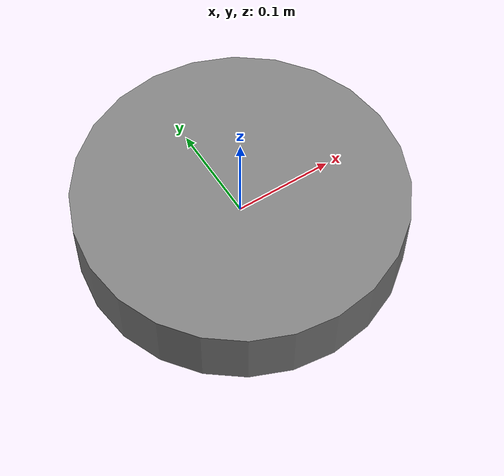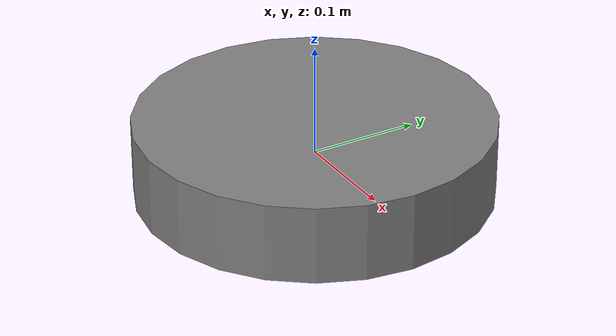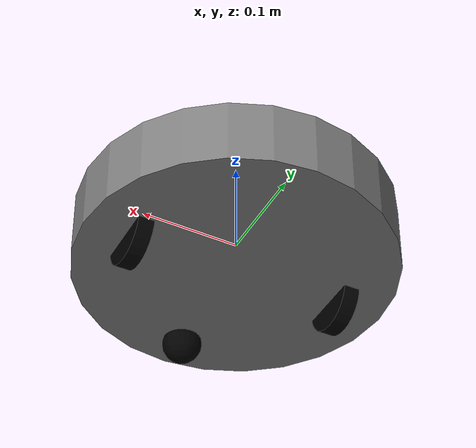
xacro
<?xml version="1.0"?>
<robot xmlns:xacro="http://www.ros.org/wiki/xacro" name="mover">
        <xacro:include filename="wheel.xacro" />
        <link name="world"></link>

        <joint name="base_joint" type="fixed">
                <origin xyz="0 0 0" rpy="0 0 0"/>
                <parent link="world"/>
                <child link="base_link"/>
        </joint>
        <link name="base_link">
                <visual>
                        <origin xyz="0 0 0" rpy="0 0 0"/>
                        <geometry>
                                <cylinder length="0.07" radius="0.16"/>
                        </geometry>
                        <material name="gray">
                                <color rgba="0.5 0.5 0.5 1"/>
                        </material>
                </visual>
                <collision>
                        <origin xyz="0 0 0" rpy="0 0 0"/>
                        <geometry>
                                <cylinder length="0.07" radius="0.16"/>
                        </geometry>
                </collision>
                <inertial>
                        <origin xyz="0 0 0" rpy="0 0 0"/>
                        <mass value="1.2"/>
                        <inertia ixx="2.26" ixy="0.0" ixz="0.0" iyy="6.26" iyz="0.0" izz="8.5" />
                </inertial>
        </link>
</robot>

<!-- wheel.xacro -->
<robot xmlns:xacro="http://www.ros.org/wiki/xacro">
<!-- The front roller -->
<joint name="roller_joint" type="fixed">
        <parent link="base_link"/>
        <child link="roller_link"/>
        <origin xyz="0 -0.12 -0.04" rpy="0 0 0"/>
</joint>
<link name="roller_link">
        <visual>
                <origin xyz="0 0 0" rpy="0 0 0"/>
                <geometry>
                        <sphere radius="0.02"/>
                </geometry>
                <material name="black">
                        <color rgba="0 0 0 1"/>
                </material>
        </visual>
        <collision>
                <origin xyz="0 0 0" rpy="0 0 0"/>
                <geometry>
                        <sphere radius="0.02"/>
                </geometry>
        </collision>
        <inertial>
                <origin xyz="0 0 0" rpy="0 0 0"/>
                <mass value="0.1"/>
                <inertia ixx="0.0082" ixy="0.0" ixz="0.0" iyy="0.0082" iyz="0.0" izz="0.0154" />
        </inertial>
</link>

<!-- Wheel Macro -->
<xacro:macro name="wheel" params="side reflect">
        <joint name="wheel_${side}_joint" type="continuous">
                <parent link="base_link"/>
                <child link="wheel_${side}_link"/>
                <origin xyz="${reflect*0.11} 0 -0.03" rpy="0 1.57075 0"/>
                <axis xyz="0 0 1"/>
        </joint>
        <link name="wheel_${side}_link">
                <visual>
                        <origin xyz="0 0 0" rpy="0 0 0"/>
                        <geometry>
                                <cylinder length="0.016" radius="0.033"/>
                        </geometry>
                        <material name="black">
                                <color rgba="0 0 0 1"/>
                        </material>
                </visual>
                <collision>
                        <origin xyz="0 0 0" rpy="0 0 0"/>
                        <geometry>
                                <cylinder length="0.016" radius="0.033"/>
                        </geometry>
                </collision>
                <inertial>
                        <origin xyz="0 0 0" rpy="0 0 0"/>
                        <mass value="0.2"/>
                        <inertia ixx="0.0082" ixy="0.0" ixz="0.0" iyy="0.0082" iyz="0.0" izz="0.0154" />
                </inertial>
        </link>
</xacro:macro>
<xacro:wheel side="right" reflect="-1"/>
<xacro:wheel side="left" reflect="1"/>

</robot>
